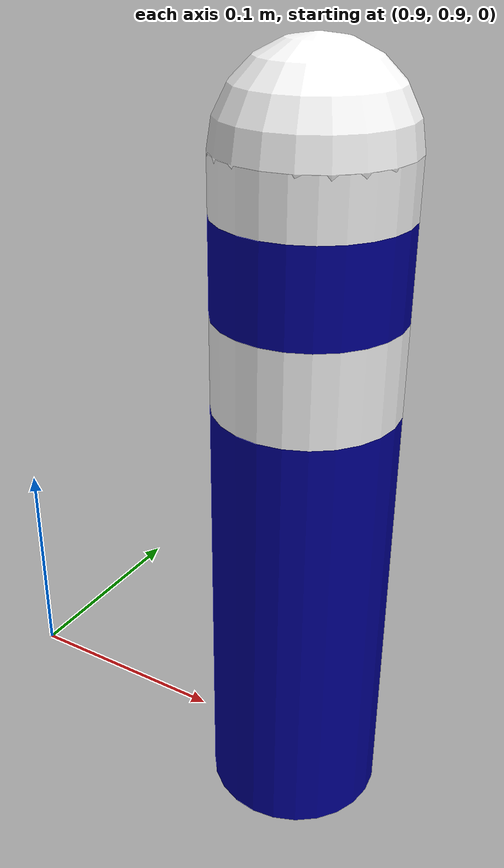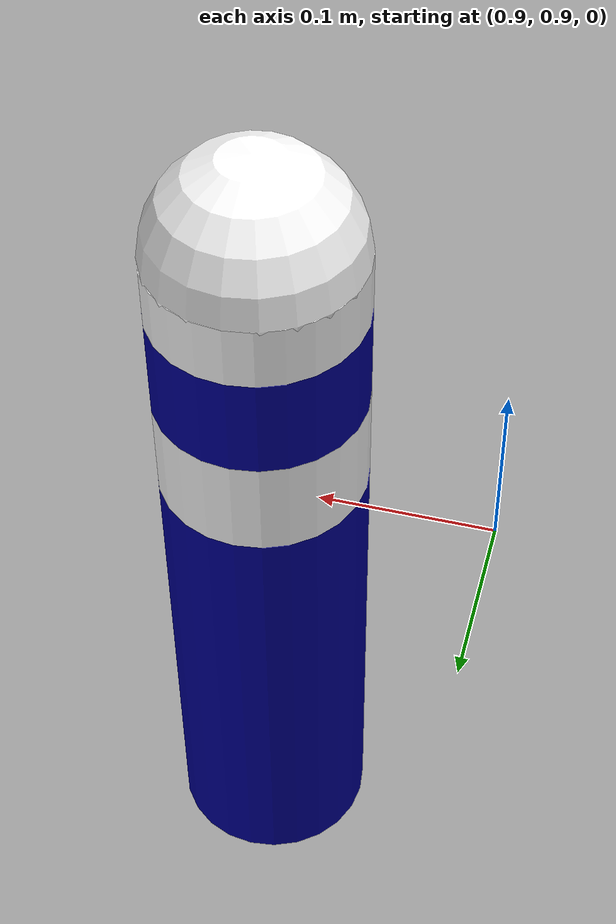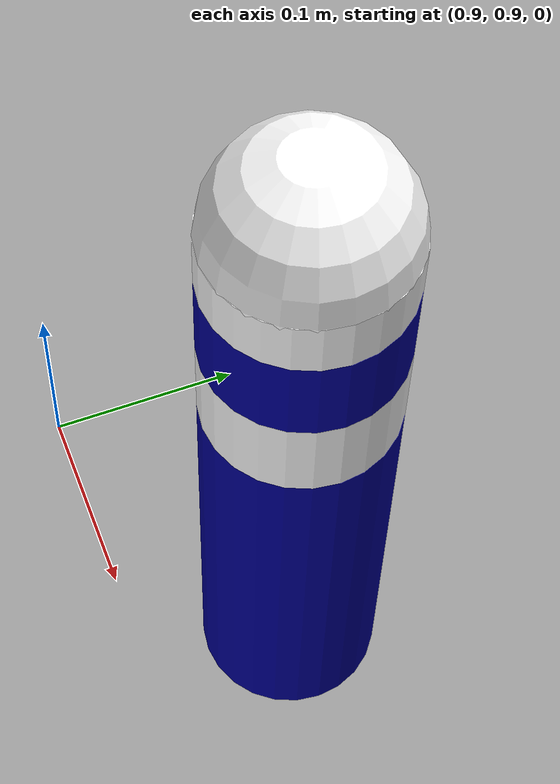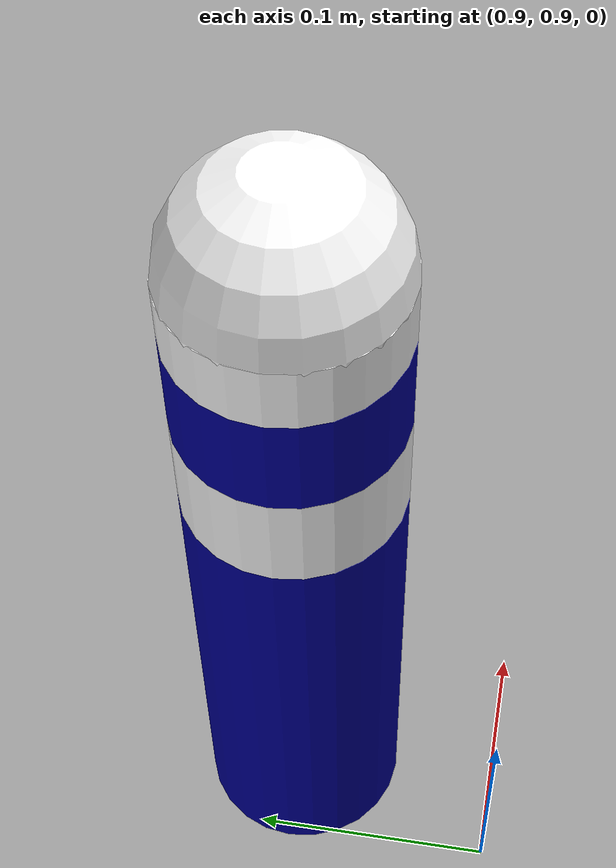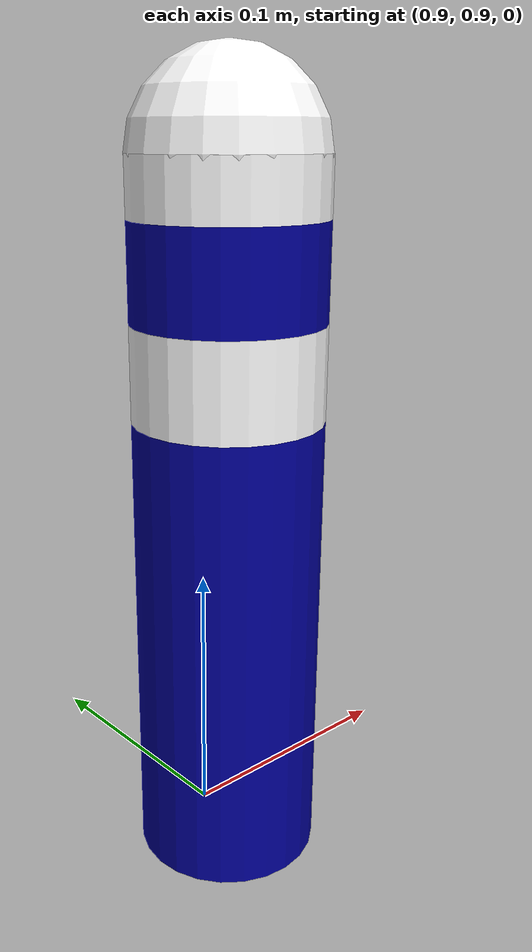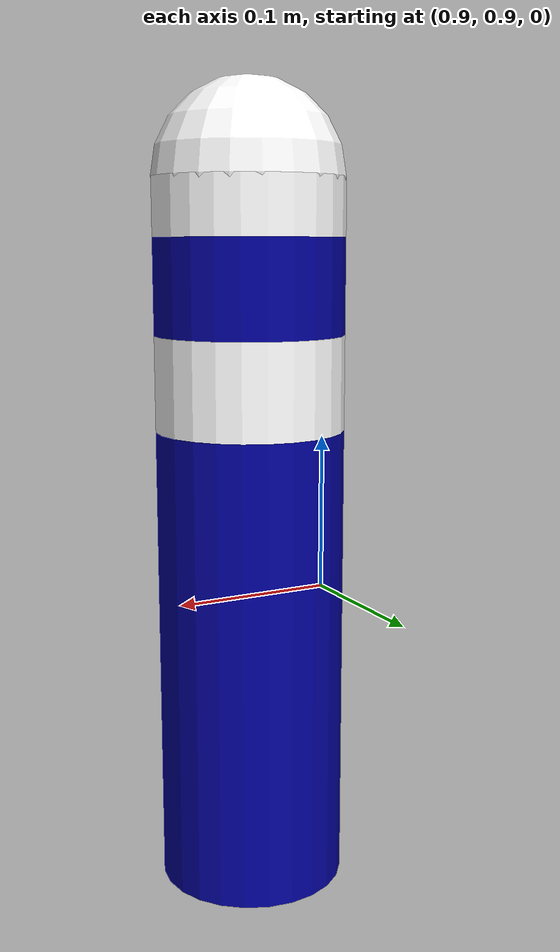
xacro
<?xml version="1.0"?>
<robot name="beacon_0" xmlns:xacro="http://www.ros.org/wiki/xacro">
  <material name="blue">
    <color rgba="0 0 0.6 1"/>
  </material>

  <material name="white">
    <color rgba="1 1 1 1"/>
  </material>

  <link name="beacon_0_footprint">
  </link>

  <gazebo reference="beacon_0_link">
    <material>Gazebo/Blue</material>
  </gazebo>
  <link name="beacon_0_link">
    <visual>
      <geometry>
       <cylinder radius="0.05" length="0.25"/>
      </geometry>
      <material name="blue"/>
    </visual>
    <collision>
      <geometry>
        <cylinder radius="0.05" length="0.25"/>
      </geometry>
    </collision>
    <inertial>
      <mass value="4.5" />
      <inertia ixx="1.0e-3" iyy="1.0e-3" izz="7.5e-3" ixy="0" ixz="0" iyz="0" />
    </inertial>
  </link>

	<link name="beacon_0_rim1">
	  <visual>
	    <geometry>
	     <cylinder radius="0.05" length="0.05"/>
	    </geometry>
	    <material name="white"/>
	  </visual>
	  <collision>
	    <geometry>
	      <cylinder radius="0.05" length="0.05"/>
	    </geometry>
	  </collision>
	  <inertial>
	    <mass value="4.5" />
	    <inertia ixx="1.0e-3" iyy="1.0e-3" izz="7.5e-3" ixy="0" ixz="0" iyz="0" />
	  </inertial>
	</link>

	<gazebo reference="beacon_0_rim2">
    <material>Gazebo/Blue</material>
  </gazebo>
	<link name="beacon_0_rim2">
	  <visual>
	    <geometry>
	     <cylinder radius="0.05" length="0.05"/>
	    </geometry>
	    <material name="blue"/>
	  </visual>
	  <collision>
	    <geometry>
	      <cylinder radius="0.05" length="0.05"/>
	    </geometry>
	  </collision>
	  <inertial>
	    <mass value="4.5" />
	    <inertia ixx="1.0e-3" iyy="1.0e-3" izz="7.5e-3" ixy="0" ixz="0" iyz="0" />
	  </inertial>
	</link>

	<link name="beacon_0_rim3">
	  <visual>
	    <geometry>
	     <cylinder radius="0.05" length="0.03"/>
	    </geometry>
	    <material name="white"/>
	  </visual>
	  <collision>
	    <geometry>
	      <cylinder radius="0.05" length="0.05"/>
	    </geometry>
	  </collision>
	  <inertial>
	    <mass value="4.5" />
	    <inertia ixx="1.0e-3" iyy="1.0e-3" izz="7.5e-3" ixy="0" ixz="0" iyz="0" />
	  </inertial>
	</link>

	<link name="beacon_0_top">
	  <visual>
	    <geometry>
	     <sphere radius="0.05"/>
	    </geometry>
	    <material name="white"/>
	  </visual>
	  <collision>
	    <geometry>
	      <sphere radius="0.05"/>
	    </geometry>
	  </collision>
	  <inertial>
	    <mass value="4.5" />
	    <inertia ixx="1.0e-3" iyy="1.0e-3" izz="7.5e-3" ixy="0" ixz="0" iyz="0" />
	  </inertial>
	</link>

  <joint name="beacon_0_joint" type="fixed">
    <origin xyz="1.0 1.0 0.0" rpy="0.0 0.0 0.0" />
    <parent link="beacon_0_footprint" />
    <child link="beacon_0_link" />
    <axis xyz="5 0 1" />
  </joint>

  <joint name="beacon_0_rim_joint" type="fixed">
    <origin xyz="0.0 0.0 0.15" rpy="0.0 0.0 0.0" />
    <parent link="beacon_0_link" />
    <child link="beacon_0_rim1" />
    <axis xyz="5 0 1" />
  </joint>

  <joint name="beacon_0_rim_joint2" type="fixed">
    <origin xyz="0.0 0.0 0.05" rpy="0.0 0.0 0.0" />
    <parent link="beacon_0_rim1" />
    <child link="beacon_0_rim2" />
    <axis xyz="5 0 1" />
  </joint>

  <joint name="beacon_0_rim_joint3" type="fixed">
    <origin xyz="0.0 0.0 0.04" rpy="0.0 0.0 0.0" />
    <parent link="beacon_0_rim2" />
    <child link="beacon_0_rim3" />
    <axis xyz="5 0 1" />
  </joint>

  <joint name="beacon_0_top_link" type="fixed">
    <origin xyz="0.0 0.0 0.015" rpy="0.0 0.0 0.0" />
    <parent link="beacon_0_rim3" />
    <child link="beacon_0_top" />
    <axis xyz="5 0 1" />
  </joint>

</robot>
